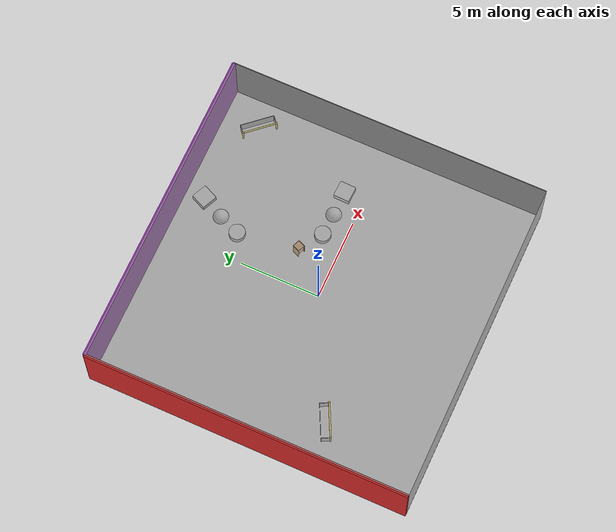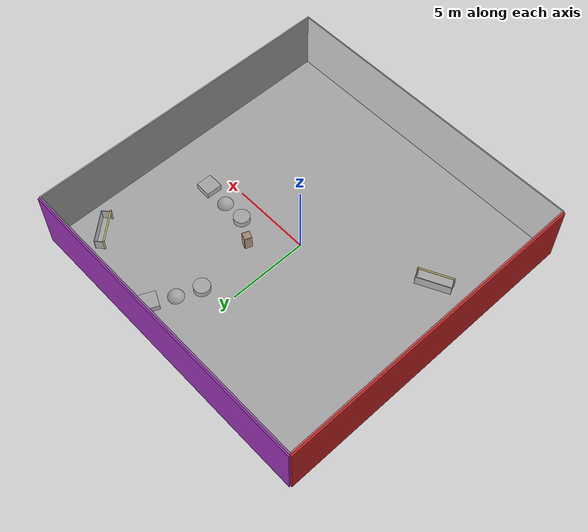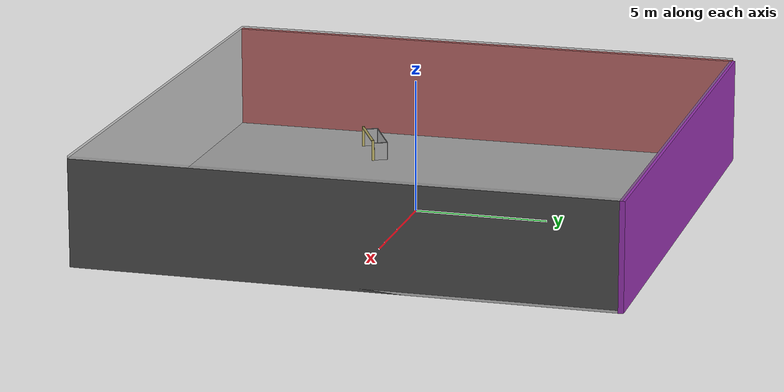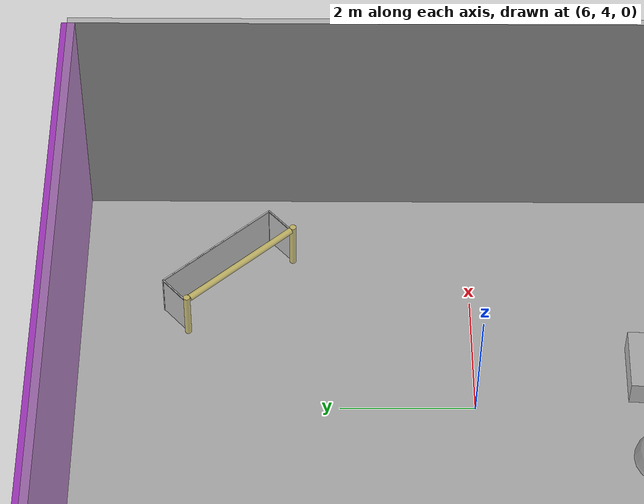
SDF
<sdf version="1.4">
 <world name="default">
  <physics type="ode">
   <max_step_size>0.001</max_step_size>
   <real_time_factor>1</real_time_factor>
   <real_time_update_rate>1000</real_time_update_rate>
   <gravity>0 0 -9.8</gravity>
  </physics>
  <scene><ambient>0.4 0.4 0.4 1</ambient><background>0.7 0.7 0.7 1</background><shadows>1</shadows></scene>
  <model name="Surrounding">
   <static>1</static>
   <link name="Ceiling">
    <collision name="Ceiling_Collision"><geometry><box><size>20 20 0.1</size></box></geometry></collision>
    <visual name="Ceiling_Visual">
     <geometry><box><size>20 20 0.1</size></box></geometry>
     <material>
      <script><uri>file://media/materials/scripts/gazebo.material</uri><name>Gazebo/GreyTransparent</name></script>
     </material>
    </visual>
    <pose>0 0 4.05 0 0 0</pose>
   </link>
   <link name="Wall_South">
    <collision name="Wall_South_Collision">
     <geometry><box><size>20 0 4</size></box></geometry>
     <pose>0 0 2 0 -0 0</pose>
    </collision>
    <visual name="Wall_South_Visual">
     <pose>0 0 2 0 -0 0</pose>
     <geometry><box><size>20 0 4</size></box></geometry>
     <material>
      <script><uri>file://media/materials/scripts/gazebo.material</uri><name>Gazebo/WhiteGlow</name></script>
     </material>
    </visual>
    <velocity_decay><linear>0</linear><angular>0</angular></velocity_decay>
    <pose>0 -10 0 0 -0 0</pose>
   </link>
   <link name="Wall_East">
    <collision name="Wall_21_Collision">
     <geometry><box><size>20 0 4</size></box></geometry>
     <pose>0 0 2 0 -0 0</pose>
    </collision>
    <visual name="Wall_21_Visual">
     <pose>0 0 2 0 -0 0</pose>
     <geometry><box><size>20 0 4</size></box></geometry>
     <material>
      <script><uri>file://media/materials/scripts/gazebo.material</uri><name>Gazebo/Road</name></script>
     </material>
    </visual>
    <velocity_decay><linear>0</linear><angular>0</angular></velocity_decay>
    <pose>10 0 0 0 -0 1.5708</pose>
   </link>
   <link name="Wall_North">
    <collision name="Wall_22_Collision">
     <geometry><box><size>20 0.2 4</size></box></geometry>
     <pose>0 0 2 0 -0 0</pose>
    </collision>
    <visual name="Wall_22_Visual">
     <pose>0 0 2 0 -0 0</pose>
     <geometry><box><size>20 0.2 4</size></box></geometry>
     <material>
      <script><uri>file://media/materials/scripts/gazebo.material</uri><name>Gazebo/Purple</name></script>
     </material>
    </visual>
    <velocity_decay><linear>0</linear><angular>0</angular></velocity_decay>
    <pose>0 10 0 0 -0 0</pose>
   </link>
   <link name="Wall_West">
    <collision name="Wall_23_Collision">
     <geometry><box><size>20 0.2 4</size></box></geometry>
     <pose>0 0 2 0 -0 0</pose>
    </collision>
    <visual name="Wall_23_Visual">
     <pose>0 0 2 0 -0 0</pose>
     <geometry><box><size>20 0.2 4</size></box></geometry>
     <material>
      <script><uri>file://media/materials/scripts/gazebo.material</uri><name>Gazebo/Red</name></script>
     </material>
    </visual>
    <velocity_decay><linear>0</linear><angular>0</angular></velocity_decay>
    <pose>-10 0 0 0 0 -1.5708</pose>
   </link>
   <link name="Ground_link">
    <collision name="collision">
     <pose>0 0 .05 0 -0 0</pose>
     <geometry><box><size>20 20 0.1</size></box></geometry>
    </collision>
    <visual name="visual">
     <pose>0 0 .05 0 -0 0</pose>
     <geometry><box><size>20 20 0.1</size></box></geometry>
     <material>
      <script><uri>file://media/materials/scripts/gazebo.material</uri><name>Gazebo/CloudySky</name></script>
     </material>
    </visual>
   </link>
   <static>1</static>
  </model>
  <spherical_coordinates>
   <surface_model>EARTH_WGS84</surface_model>
   <latitude_deg>0</latitude_deg>
   <longitude_deg>0</longitude_deg>
   <elevation>0</elevation>
   <heading_deg>0</heading_deg>
  </spherical_coordinates>
  <light name="lightball_0" type="diffuse">
   <diffuse>0.8 0.8 0.8 1</diffuse>
   <specular>0.2 0.2 0.2 1</specular>
   <attenuation>
    <range>100</range>
    <constant>0.7</constant>
    <linear>0.01</linear>
    <quadratic>0.001</quadratic>
   </attenuation>
   <direction>-0.5 0.1 -0.9</direction>
   <pose>-9.98711928109 3.66459117816 1.87628904726 0 0 0</pose>
  </light>
  <light name="lightball_1" type="diffuse">
   <diffuse>0.8 0.8 0.8 1</diffuse>
   <specular>0.2 0.2 0.2 1</specular>
   <attenuation>
    <range>100</range>
    <constant>0.7</constant>
    <linear>0.01</linear>
    <quadratic>0.001</quadratic>
   </attenuation>
   <direction>-0.5 0.1 -0.9</direction>
   <pose>-8.78743296446 0.245569359173 1.67054202727 0 0 0</pose>
  </light>
  <light name="lightball_2" type="diffuse">
   <diffuse>0.8 0.8 0.8 1</diffuse>
   <specular>0.2 0.2 0.2 1</specular>
   <attenuation>
    <range>100</range>
    <constant>0.7</constant>
    <linear>0.01</linear>
    <quadratic>0.001</quadratic>
   </attenuation>
   <direction>-0.5 0.1 -0.9</direction>
   <pose>-5.80485068563 5.19868381043 0.523384165359 0 0 0</pose>
  </light>
  <light name="lightball_3" type="diffuse">
   <diffuse>0.8 0.8 0.8 1</diffuse>
   <specular>0.2 0.2 0.2 1</specular>
   <attenuation>
    <range>100</range>
    <constant>0.7</constant>
    <linear>0.01</linear>
    <quadratic>0.001</quadratic>
   </attenuation>
   <direction>-0.5 0.1 -0.9</direction>
   <pose>4.10931785256 0.78733385632 3.47490699499 0 0 0</pose>
  </light>
  <include>
   <uri>model://robocup_3Dsim_goal</uri>
   <pose>-6.87540129411 -3.83764244662 0 0 0 2.03086385615</pose>
  </include>
  <include><uri>model://cabinet</uri><pose>2.06840937297 2.18993429591 0 0 0 1.19886923897</pose></include>
  <include>
   <uri>model://textured_shapes</uri>
   <pose>2.17827950789 7.34470383853 0 0 0 2.71354327031</pose>
  </include>
  <include>
   <uri>model://textured_shapes</uri>
   <pose>5.05154426666 1.27237742709 0 0 0 1.5432026235</pose>
  </include>
  <include>
   <uri>model://robocup_3Dsim_goal</uri>
   <pose>8.06439673233 7.49654952584 0 0 0 0.725704825812</pose>
  </include>
 </world>
</sdf>

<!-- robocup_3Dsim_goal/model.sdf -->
<sdf version="1.5">
  <model name="robocup_3d_goal">
    <static>true</static>
    <link name="left_post">
      <pose>0 1.05 0.45 0 0 0</pose>
      <collision name="collision">
        <geometry>
          <cylinder>
            <radius>0.05</radius>
            <length>0.9</length>
          </cylinder>
        </geometry>
      </collision>
      <visual name="visual">
        <geometry>
          <cylinder>
            <radius>0.05</radius>
            <length>0.9</length>
          </cylinder>
        </geometry>
        <material>
          <script>
            <uri>file://media/materials/scripts/gazebo.material</uri>
            <name>Gazebo/ZincYellow</name>
          </script>
        </material>
      </visual>
    </link>
    <link name="left_support_horiz_lower">
      <pose>0.30 1.05 0.01 0 0 0</pose>
      <collision name="collision">
        <geometry>
          <box>
            <size>0.50 0.02 0.02</size>
          </box>
        </geometry>
      </collision>
      <visual name="visual">
        <geometry>
          <box>
            <size>0.50 0.02 0.02</size>
          </box>
        </geometry>
        <material>
          <script>
            <uri>file://media/materials/scripts/gazebo.material</uri>
            <name>Gazebo/White</name>
          </script>
        </material>
      </visual>
    </link>
    <link name="left_support_horiz_upper">
      <pose>0.30 1.05 0.79 0 0 0</pose>
      <collision name="collision">
        <geometry>
          <box>
            <size>0.50 0.02 0.02</size>
          </box>
        </geometry>
      </collision>
      <visual name="visual">
        <geometry>
          <box>
            <size>0.50 0.02 0.02</size>
          </box>
        </geometry>
        <material>
          <script>
            <uri>file://media/materials/scripts/gazebo.material</uri>
            <name>Gazebo/White</name>
          </script>
        </material>
      </visual>
    </link>
    <link name="left_support_vertical">
      <pose>0.56 1.05 0.4 0 1.5708 0</pose>
      <collision name="collision">
        <geometry>
          <box>
            <size>0.80 0.02 0.02</size>
          </box>
        </geometry>
      </collision>
      <visual name="visual">
        <geometry>
          <box>
            <size>0.80 0.02 0.02</size>
          </box>
        </geometry>
        <material>
          <script>
            <uri>file://media/materials/scripts/gazebo.material</uri>
            <name>Gazebo/White</name>
          </script>
        </material>
      </visual>
    </link>
    <link name="right_support_horiz_lower">
      <pose>0.30 -1.05 0.01 0 0 0</pose>
      <collision name="collision">
        <geometry>
          <box>
            <size>0.50 0.02 0.02</size>
          </box>
        </geometry>
      </collision>
      <visual name="visual">
        <geometry>
          <box>
            <size>0.50 0.02 0.02</size>
          </box>
        </geometry>
        <material>
          <script>
            <uri>file://media/materials/scripts/gazebo.material</uri>
            <name>Gazebo/White</name>
          </script>
        </material>
      </visual>
    </link>
    <link name="right_support_horiz_upper">
      <pose>0.30 -1.05 0.79 0 0 0</pose>
      <collision name="collision">
        <geometry>
          <box>
            <size>0.50 0.02 0.02</size>
          </box>
        </geometry>
      </collision>
      <visual name="visual">
        <geometry>
          <box>
            <size>0.50 0.02 0.02</size>
          </box>
        </geometry>
        <material>
          <script>
            <uri>file://media/materials/scripts/gazebo.material</uri>
            <name>Gazebo/White</name>
          </script>
        </material>
      </visual>
    </link>
    <link name="right_support_vertical">
      <pose>0.56 -1.05 0.4 0 1.5708 0</pose>
      <collision name="collision">
        <geometry>
          <box>
            <size>0.80 0.02 0.02</size>
          </box>
        </geometry>
      </collision>
      <visual name="visual">
        <geometry>
          <box>
            <size>0.80 0.02 0.02</size>
          </box>
        </geometry>
        <material>
          <script>
            <uri>file://media/materials/scripts/gazebo.material</uri>
            <name>Gazebo/White</name>
          </script>
        </material>
      </visual>
    </link>
    <link name="center_support_horiz_lower">
      <pose>0.56 0 0.01 0 1.5708 0</pose>
      <collision name="collision">
        <geometry>
          <box>
            <size>0.02 2.08 0.02</size>
          </box>
        </geometry>
      </collision>
      <visual name="visual">
        <geometry>
          <box>
            <size>0.02 2.08 0.02</size>
          </box>
        </geometry>
        <material>
          <script>
            <uri>file://media/materials/scripts/gazebo.material</uri>
            <name>Gazebo/White</name>
          </script>
        </material>
      </visual>
    </link>
    <link name="center_support_horiz_upper">
      <pose>0.56 0 0.79 0 1.5708 0</pose>
      <collision name="collision">
        <geometry>
          <box>
            <size>0.02 2.08 0.02</size>
          </box>
        </geometry>
      </collision>
      <visual name="visual">
        <geometry>
          <box>
            <size>0.02 2.08 0.02</size>
          </box>
        </geometry>
        <material>
          <script>
            <uri>file://media/materials/scripts/gazebo.material</uri>
            <name>Gazebo/White</name>
          </script>
        </material>
      </visual>
    </link>
    <link name="right_post">
      <pose>0 -1.05 0.45 0 0 0</pose>
      <collision name="collision">
        <geometry>
          <cylinder>
            <radius>0.05</radius>
            <length>0.9</length>
          </cylinder>
        </geometry>
      </collision>
      <visual name="visual">
        <geometry>
          <cylinder>
            <radius>0.05</radius>
            <length>0.9</length>
          </cylinder>
        </geometry>
        <material>
          <script>
            <uri>file://media/materials/scripts/gazebo.material</uri>
            <name>Gazebo/ZincYellow</name>
          </script>
        </material>
      </visual>
    </link>
    <link name="crossbar">
      <pose>0 0 0.85 1.57 1.57 0</pose>
      <collision name="collision">
        <geometry>
          <cylinder>
            <radius>0.05</radius>
            <length>2.0</length>
          </cylinder>
        </geometry>
      </collision>
      <visual name="visual">
        <geometry>
          <cylinder>
            <radius>0.05</radius>
            <length>2.0</length>
          </cylinder>
        </geometry>
        <material>
          <script>
            <uri>file://media/materials/scripts/gazebo.material</uri>
            <name>Gazebo/ZincYellow</name>
          </script>
        </material>
      </visual>
    </link>
    <link name="center_net">
      <pose>0.56 0 0.40 0 0 0</pose>
      <collision name="collision">
        <geometry>
          <box>
            <size>0.01 2.1 0.80</size>
          </box>
        </geometry>
      </collision>
      <visual name="visual">
        <geometry>
          <box>
            <size>0.01 2.1 0.80</size>
          </box>
        </geometry>
        <material>
          <script>
            <uri>model://../model_source/models/robocup09_spl_field/materials/scripts/</uri>
            <uri>model://../model_source/models/robocup09_spl_field/materials/textures/</uri>
            <name>RoboCup/Net</name>
          </script>
        </material>
      </visual>
    </link>
    <link name="left_net">
      <pose>0.30 1.05 0.40 0 0 0</pose>
      <collision name="collision">
        <geometry>
          <box>
            <size>0.50 0.01 0.76</size>
          </box>
        </geometry>
      </collision>
      <visual name="visual">
        <geometry>
          <box>
            <size>0.50 0.01 0.76</size>
          </box>
        </geometry>
        <material>
          <script>
            <uri>model://../model_source/models/robocup09_spl_field/materials/scripts/</uri>
            <uri>model://../model_source/models/robocup09_spl_field/materials/textures/</uri>
            <name>RoboCup/Net</name>
          </script>
        </material>
      </visual>
    </link>
    <link name="right_net">
      <pose>0.30 -1.05 0.40 0 0 0</pose>
      <collision name="collision">
        <geometry>
          <box>
            <size>0.50 0.01 0.76</size>
          </box>
        </geometry>
      </collision>
      <visual name="visual">
        <geometry>
          <box>
            <size>0.50 0.01 0.76</size>
          </box>
        </geometry>
        <material>
          <script>
            <uri>model://../model_source/models/robocup09_spl_field/materials/scripts/</uri>
            <uri>model://../model_source/models/robocup09_spl_field/materials/textures/</uri>
            <name>RoboCup/Net</name>
          </script>
        </material>
      </visual>
    </link>
  </model>
</sdf>

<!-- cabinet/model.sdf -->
<sdf version="1.5">
  <model name="cabinet">
    <static>true</static>
    <link name="cabinet_bottom_plate">
      <inertial>
        <pose>0 0 -1 0 0 0</pose>
        <inertia>
          <ixx>2.050000</ixx>
          <ixy>0</ixy>
          <ixz>0</ixz>
          <iyy>2.050000</iyy>
          <iyz>0</iyz>
          <izz>2.050000</izz>
        </inertia>
        <mass>25.000000</mass>
      </inertial>
      <collision name="cabinet_bottom_plate_geom">
        <pose>0 0 0.010000 0 0 0</pose>
        <geometry>
          <box>
            <size>0.450000 0.450000 0.020000</size>
          </box>
        </geometry>
      </collision>
      <visual name="cabinet_bottom_plate_geom_visual">
        <pose>0 0 0.010000 0 0 0</pose>
        <geometry>
          <box>
            <size>0.450000 0.450000 0.020000</size>
          </box>
        </geometry>
        <material>
          <script>
            <uri>model://media/materials/scripts/gazebo.material</uri>
            <name>Gazebo/Wood</name>
          </script>
        </material>
      </visual>
      <collision name="cabinet_bottom_plate_geom_cabinet_back_plate">
        <pose>0.235000 0 0.510000 0 0 0</pose>
        <geometry>
          <box>
            <size>0.020000 0.450000 1.020000</size>
          </box>
        </geometry>
      </collision>
      <visual name="cabinet_bottom_plate_geom_cabinet_back_plate_visual">
        <pose>0.235000 0 0.510000 0 0 0</pose>
        <geometry>
          <box>
            <size>0.020000 0.450000 1.020000</size>
          </box>
        </geometry>
        <material>
          <script>
            <uri>model://media/materials/scripts/gazebo.material</uri>
            <name>Gazebo/Wood</name>
          </script>
        </material>
      </visual>
      <collision name="cabinet_bottom_plate_geom_cabinet_left_plate">
        <pose>0 0.235000 0.510000 0 0 0</pose>
        <geometry>
          <box>
            <size>0.450000 0.020000 1.020000</size>
          </box>
        </geometry>
      </collision>
      <visual name="cabinet_bottom_plate_geom_cabinet_left_plate_visual">
        <pose>0 0.235000 0.510000 0 0 0</pose>
        <geometry>
          <box>
            <size>0.450000 0.020000 1.020000</size>
          </box>
        </geometry>
        <material>
          <script>
            <uri>model://media/materials/scripts/gazebo.material</uri>
            <name>Gazebo/Wood</name>
          </script>
        </material>
      </visual>
      <collision name="cabinet_bottom_plate_geom_cabinet_middle_plate">
        <pose>0 0 0.510000 0 0 0</pose>
        <geometry>
          <box>
            <size>0.450000 0.450000 0.020000</size>
          </box>
        </geometry>
      </collision>
      <visual name="cabinet_bottom_plate_geom_cabinet_middle_plate_visual">
        <pose>0 0 0.510000 0 0 0</pose>
        <geometry>
          <box>
            <size>0.450000 0.450000 0.020000</size>
          </box>
        </geometry>
        <material>
          <script>
            <uri>model://media/materials/scripts/gazebo.material</uri>
            <name>Gazebo/Wood</name>
          </script>
        </material>
      </visual>
      <collision name="cabinet_bottom_plate_geom_cabinet_right_plate">
        <pose>0 -0.235000 0.510000 0 0 0</pose>
        <geometry>
          <box>
            <size>0.450000 0.020000 1.020000</size>
          </box>
        </geometry>
      </collision>
      <visual name="cabinet_bottom_plate_geom_cabinet_right_plate_visual">
        <pose>0 -0.235000 0.510000 0 0 0</pose>
        <geometry>
          <box>
            <size>0.450000 0.020000 1.020000</size>
          </box>
        </geometry>
        <material>
          <script>
            <uri>model://media/materials/scripts/gazebo.material</uri>
            <name>Gazebo/Wood</name>
          </script>
        </material>
      </visual>
      <collision name="cabinet_bottom_plate_geom_cabinet_top_plate">
        <pose>0 0 1.010000 0 0 0</pose>
        <geometry>
          <box>
            <size>0.450000 0.450000 0.020000</size>
          </box>
        </geometry>
      </collision>
      <visual name="cabinet_bottom_plate_geom_cabinet_top_plate_visual">
        <pose>0 0 1.010000 0 0 0</pose>
        <geometry>
          <box>
            <size>0.450000 0.450000 0.020000</size>
          </box>
        </geometry>
        <material>
          <script>
            <uri>model://media/materials/scripts/gazebo.material</uri>
            <name>Gazebo/Wood</name>
          </script>
        </material>
      </visual>
    </link>
  </model>
</sdf>

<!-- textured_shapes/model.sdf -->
<sdf version="1.6">
  <model name="textured_shapes">
    <pose>0 0 0.5 0 0 0</pose>
    <link name="box">
      <pose>0 -1.5 0 0 0 0</pose>
      <collision name="collision">
        <geometry>
          <box>
            <size>1 1 1</size>
          </box>
        </geometry>
      </collision>
      <visual name="visual">
        <geometry>
          <box>
            <size>1 1 1</size>
          </box>
        </geometry>
        <material>
          <script>
            <uri>model://../model_source/models/textured_shapes/materials/scripts</uri>
            <uri>model://../model_source/models/textured_shapes/materials/textures</uri>
            <name>TexturedShape/Squares</name>
          </script>
        </material>
      </visual>
    </link>
    <link name="sphere">
      <collision name="collision">
        <geometry>
          <sphere>
            <radius>0.5</radius>
          </sphere>
        </geometry>
      </collision>
      <visual name="visual">
        <geometry>
          <sphere>
            <radius>0.5</radius>
          </sphere>
        </geometry>
        <material>
          <script>
            <uri>model://../model_source/models/textured_shapes/materials/scripts</uri>
            <uri>model://../model_source/models/textured_shapes/materials/textures</uri>
            <name>TexturedShape/Squares</name>
          </script>
        </material>
      </visual>
    </link>
    <link name="cylinder">
      <pose>0 1.5 0 0 0 0</pose>
      <collision name="collision">
        <geometry>
          <cylinder>
            <radius>0.5</radius>
            <length>1</length>
          </cylinder>
        </geometry>
      </collision>
      <visual name="visual">
        <geometry>
          <cylinder>
            <radius>0.5</radius>
            <length>1</length>
          </cylinder>
        </geometry>
        <material>
          <script>
            <uri>model://../model_source/models/textured_shapes/materials/scripts</uri>
            <uri>model://../model_source/models/textured_shapes/materials/textures</uri>
            <name>TexturedShape/Squares</name>
          </script>
        </material>
      </visual>
    </link>
  </model>
</sdf>
